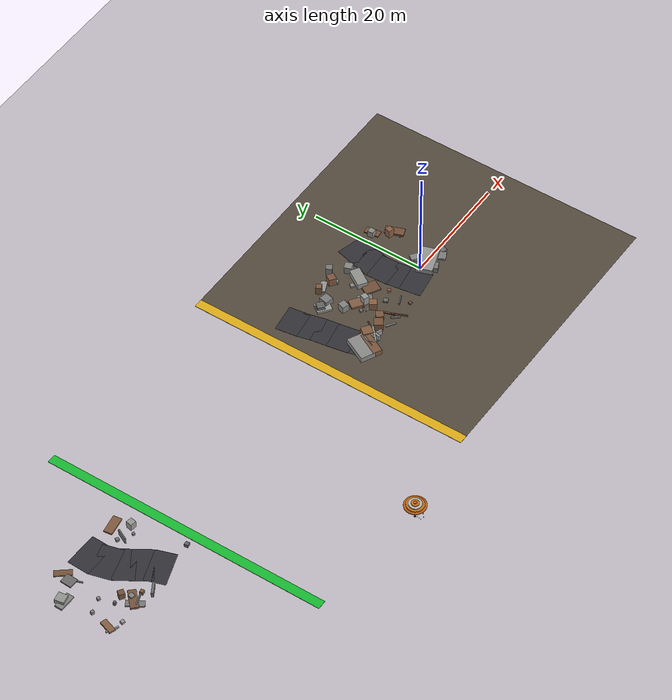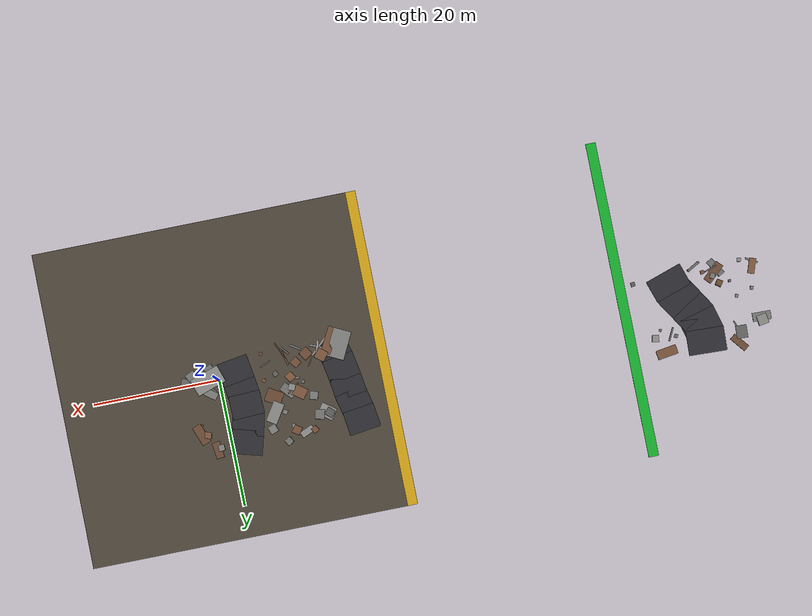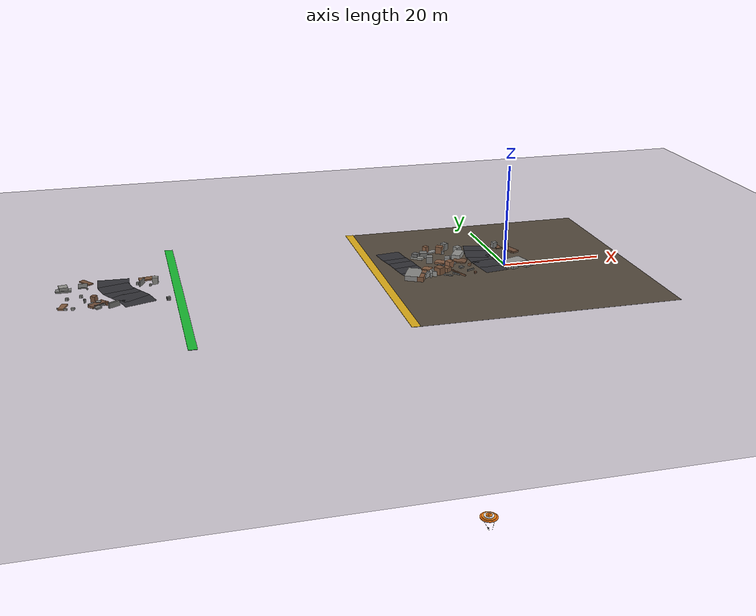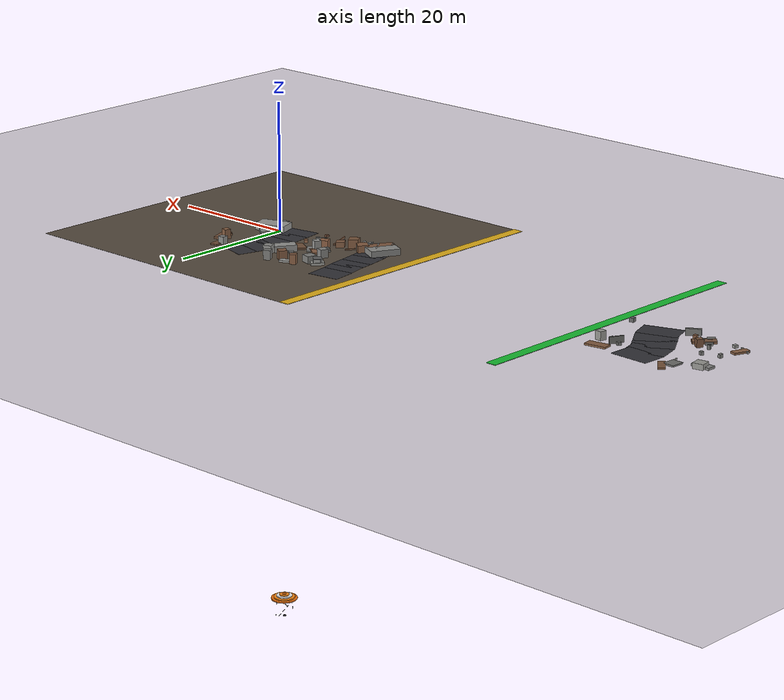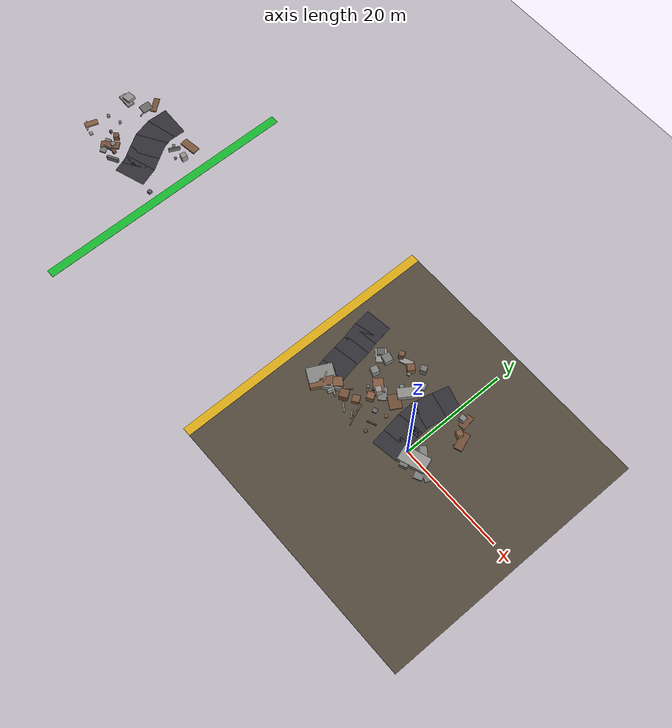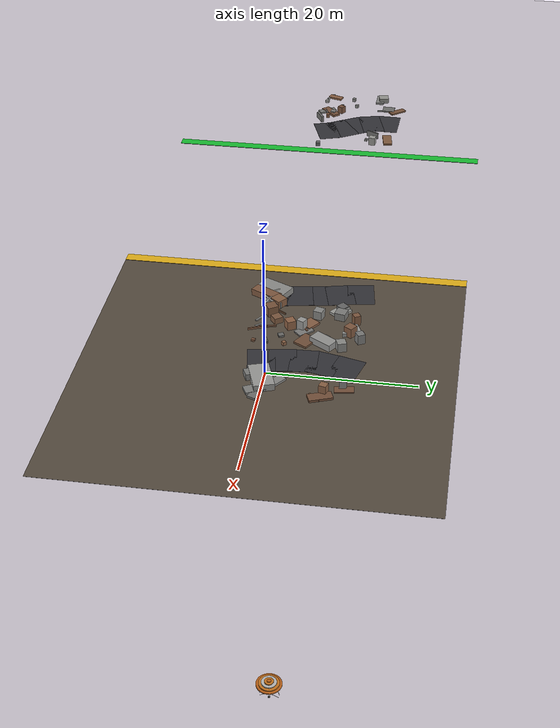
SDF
<sdf version="1.6">
 <world name="navitas_arena">
  <model name="ground_plane">
   <static>true</static>
   <link name="link">
    <collision name="collision">
     <geometry><plane><normal>0 0 1</normal><size>400 400</size></plane></geometry>
     <surface><friction><ode><mu>0.820</mu><mu2>0.820</mu2></ode></friction></surface>
    </collision>
    <visual name="visual">
     <cast_shadows>false</cast_shadows>
     <geometry><plane><normal>0 0 1</normal><size>400 400</size></plane></geometry>
     <material><ambient>0.280 0.270 0.250 1</ambient><diffuse>0.280 0.270 0.250 1</diffuse></material>
    </visual>
   </link>
  </model>
  <model name="brd_kolay_E">
   <static>true</static>
   <pose>-64.200 0.000 0.040 0 0 0.000</pose>
   <link name="link">
    <collision name="col"><geometry><box><size>1.600 50.000 0.080</size></box></geometry></collision>
    <visual name="vis">
     <geometry><box><size>1.600 50.000 0.080</size></box></geometry>
     <material><ambient>0.10 0.75 0.20 1</ambient><diffuse>0.10 0.75 0.20 1</diffuse></material>
    </visual>
   </link>
  </model>
  <model name="road_kolay_3_13">
   <static>true</static>
   <pose>-71.848 -1.117 0.040 0 0 1.893</pose>
   <link name="link">
    <collision name="col"><geometry><box><size>3.606 6.000 0.020</size></box></geometry></collision>
    <visual name="vis">
     <geometry><box><size>3.606 6.000 0.020</size></box></geometry>
     <material><ambient>0.20 0.20 0.22 1</ambient><diffuse>0.20 0.20 0.22 1</diffuse></material>
    </visual>
   </link>
  </model>
  <model name="road_kolay_3_14">
   <static>true</static>
   <pose>-73.018 1.333 0.040 0 0 2.137</pose>
   <link name="link">
    <collision name="col"><geometry><box><size>3.665 6.000 0.020</size></box></geometry></collision>
    <visual name="vis">
     <geometry><box><size>3.665 6.000 0.020</size></box></geometry>
     <material><ambient>0.20 0.20 0.22 1</ambient><diffuse>0.20 0.20 0.22 1</diffuse></material>
    </visual>
   </link>
  </model>
  <model name="road_kolay_3_15">
   <static>true</static>
   <pose>-74.485 3.667 0.040 0 0 2.127</pose>
   <link name="link">
    <collision name="col"><geometry><box><size>3.648 6.000 0.020</size></box></geometry></collision>
    <visual name="vis">
     <geometry><box><size>3.648 6.000 0.020</size></box></geometry>
     <material><ambient>0.20 0.20 0.22 1</ambient><diffuse>0.20 0.20 0.22 1</diffuse></material>
    </visual>
   </link>
  </model>
  <model name="road_kolay_3_16">
   <static>true</static>
   <pose>-75.562 6.137 0.040 0 0 1.834</pose>
   <link name="link">
    <collision name="col"><geometry><box><size>3.599 6.000 0.020</size></box></geometry></collision>
    <visual name="vis">
     <geometry><box><size>3.599 6.000 0.020</size></box></geometry>
     <material><ambient>0.20 0.20 0.22 1</ambient><diffuse>0.20 0.20 0.22 1</diffuse></material>
    </visual>
   </link>
  </model>
  <model name="road_kolay_3_17">
   <static>true</static>
   <pose>-75.861 8.910 0.040 0 0 1.536</pose>
   <link name="link">
    <collision name="col"><geometry><box><size>3.842 6.000 0.020</size></box></geometry></collision>
    <visual name="vis">
     <geometry><box><size>3.842 6.000 0.020</size></box></geometry>
     <material><ambient>0.20 0.20 0.22 1</ambient><diffuse>0.20 0.20 0.22 1</diffuse></material>
    </visual>
   </link>
  </model>
  <model name="deb_kolay_4">
   <static>true</static>
   <pose>-68.069 7.036 0.649 0 0 1.401</pose>
   <link name="link">
    <collision name="col"><geometry><box><size>1.051 1.051 1.299</size></box></geometry></collision>
    <visual name="vis">
     <geometry><box><size>1.051 1.051 1.299</size></box></geometry>
     <material><ambient>0.60 0.60 0.58 1</ambient><diffuse>0.60 0.60 0.58 1</diffuse></material>
    </visual>
   </link>
  </model>
  <model name="deb_kolay_8">
   <static>true</static>
   <pose>-78.709 -2.027 0.187 0 0 0.319</pose>
   <link name="link">
    <collision name="col"><geometry><box><size>2.051 0.212 0.374</size></box></geometry></collision>
    <visual name="vis">
     <geometry><box><size>2.051 0.212 0.374</size></box></geometry>
     <material><ambient>0.42 0.42 0.42 1</ambient><diffuse>0.42 0.42 0.42 1</diffuse></material>
    </visual>
   </link>
  </model>
  <model name="deb_kolay_24">
   <static>true</static>
   <pose>-85.254 -2.083 0.145 0 0 2.637</pose>
   <link name="link">
    <collision name="col"><geometry><box><size>2.065 0.244 0.291</size></box></geometry></collision>
    <visual name="vis">
     <geometry><box><size>2.065 0.244 0.291</size></box></geometry>
     <material><ambient>0.58 0.58 0.57 1</ambient><diffuse>0.58 0.58 0.57 1</diffuse></material>
    </visual>
   </link>
  </model>
  <model name="deb_kolay_26">
   <static>true</static>
   <pose>-83.326 -2.533 0.203 0 0 1.327</pose>
   <link name="link">
    <collision name="col"><geometry><box><size>0.581 0.581 0.405</size></box></geometry></collision>
    <visual name="vis">
     <geometry><box><size>0.581 0.581 0.405</size></box></geometry>
     <material><ambient>0.59 0.59 0.58 1</ambient><diffuse>0.59 0.59 0.58 1</diffuse></material>
    </visual>
   </link>
  </model>
  <model name="deb_kolay_28">
   <static>true</static>
   <pose>-85.096 7.355 0.417 0 0 1.737</pose>
   <link name="link">
    <collision name="col"><geometry><box><size>1.596 1.596 0.834</size></box></geometry></collision>
    <visual name="vis">
     <geometry><box><size>1.596 1.596 0.834</size></box></geometry>
     <material><ambient>0.59 0.59 0.57 1</ambient><diffuse>0.59 0.59 0.57 1</diffuse></material>
    </visual>
   </link>
  </model>
  <model name="deb_kolay_29">
   <static>true</static>
   <pose>-81.550 8.585 0.117 0 0 1.534</pose>
   <link name="link">
    <collision name="col"><geometry><box><size>2.020 1.723 0.233</size></box></geometry></collision>
    <visual name="vis">
     <geometry><box><size>2.020 1.723 0.233</size></box></geometry>
     <material><ambient>0.43 0.43 0.42 1</ambient><diffuse>0.43 0.43 0.42 1</diffuse></material>
    </visual>
   </link>
  </model>
  <model name="deb_kolay_50">
   <static>true</static>
   <pose>-84.418 2.161 0.266 0 0 2.775</pose>
   <link name="link">
    <collision name="col"><geometry><box><size>0.518 0.518 0.531</size></box></geometry></collision>
    <visual name="vis">
     <geometry><box><size>0.518 0.518 0.531</size></box></geometry>
     <material><ambient>0.50 0.50 0.49 1</ambient><diffuse>0.50 0.50 0.49 1</diffuse></material>
    </visual>
   </link>
  </model>
  <model name="deb_kolay_57">
   <static>true</static>
   <pose>-81.002 7.693 0.113 0 0 1.915</pose>
   <link name="link">
    <collision name="col"><geometry><box><size>2.131 0.167 0.226</size></box></geometry></collision>
    <visual name="vis">
     <geometry><box><size>2.131 0.167 0.226</size></box></geometry>
     <material><ambient>0.58 0.58 0.57 1</ambient><diffuse>0.58 0.58 0.57 1</diffuse></material>
    </visual>
   </link>
  </model>
  <model name="deb_kolay_65">
   <static>true</static>
   <pose>-78.777 -0.887 0.291 0 0 1.323</pose>
   <link name="link">
    <collision name="col"><geometry><box><size>0.798 0.798 0.581</size></box></geometry></collision>
    <visual name="vis">
     <geometry><box><size>0.798 0.798 0.581</size></box></geometry>
     <material><ambient>0.52 0.52 0.51 1</ambient><diffuse>0.52 0.52 0.51 1</diffuse></material>
    </visual>
   </link>
  </model>
  <model name="deb_kolay_86">
   <static>true</static>
   <pose>-71.355 7.222 0.216 0 0 1.067</pose>
   <link name="link">
    <collision name="col"><geometry><box><size>0.551 0.551 0.431</size></box></geometry></collision>
    <visual name="vis">
     <geometry><box><size>0.551 0.551 0.431</size></box></geometry>
     <material><ambient>0.46 0.46 0.45 1</ambient><diffuse>0.46 0.46 0.45 1</diffuse></material>
    </visual>
   </link>
  </model>
  <model name="deb_kolay_87">
   <static>true</static>
   <pose>-85.100 6.811 0.172 0 0 3.123</pose>
   <link name="link">
    <collision name="col"><geometry><box><size>2.889 1.356 0.343</size></box></geometry></collision>
    <visual name="vis">
     <geometry><box><size>2.889 1.356 0.343</size></box></geometry>
     <material><ambient>0.52 0.52 0.51 1</ambient><diffuse>0.52 0.52 0.51 1</diffuse></material>
    </visual>
   </link>
  </model>
  <model name="deb_kolay_104">
   <static>true</static>
   <pose>-79.547 0.436 0.578 0 0 2.535</pose>
   <link name="link">
    <collision name="col"><geometry><box><size>0.953 0.953 1.156</size></box></geometry></collision>
    <visual name="vis">
     <geometry><box><size>0.953 0.953 1.156</size></box></geometry>
     <material><ambient>0.46 0.32 0.23 1</ambient><diffuse>0.46 0.32 0.23 1</diffuse></material>
    </visual>
   </link>
  </model>
  <model name="deb_kolay_107">
   <static>true</static>
   <pose>-81.230 0.408 0.331 0 0 0.158</pose>
   <link name="link">
    <collision name="col"><geometry><box><size>0.406 0.406 0.663</size></box></geometry></collision>
    <visual name="vis">
     <geometry><box><size>0.406 0.406 0.663</size></box></geometry>
     <material><ambient>0.41 0.41 0.40 1</ambient><diffuse>0.41 0.41 0.40 1</diffuse></material>
    </visual>
   </link>
  </model>
  <model name="deb_kolay_112">
   <static>true</static>
   <pose>-66.313 -1.989 0.294 0 0 0.131</pose>
   <link name="link">
    <collision name="col"><geometry><box><size>0.651 0.651 0.589</size></box></geometry></collision>
    <visual name="vis">
     <geometry><box><size>0.651 0.651 0.589</size></box></geometry>
     <material><ambient>0.40 0.40 0.40 1</ambient><diffuse>0.40 0.40 0.40 1</diffuse></material>
    </visual>
   </link>
  </model>
  <model name="deb_kolay_118">
   <static>true</static>
   <pose>-69.462 9.462 0.139 0 0 0.149</pose>
   <link name="link">
    <collision name="col"><geometry><box><size>3.253 1.464 0.277</size></box></geometry></collision>
    <visual name="vis">
     <geometry><box><size>3.253 1.464 0.277</size></box></geometry>
     <material><ambient>0.51 0.36 0.25 1</ambient><diffuse>0.51 0.36 0.25 1</diffuse></material>
    </visual>
   </link>
  </model>
  <model name="deb_kolay_120">
   <static>true</static>
   <pose>-77.312 -1.715 0.319 0 0 0.114</pose>
   <link name="link">
    <collision name="col"><geometry><box><size>0.581 0.581 0.638</size></box></geometry></collision>
    <visual name="vis">
     <geometry><box><size>0.581 0.581 0.638</size></box></geometry>
     <material><ambient>0.51 0.35 0.25 1</ambient><diffuse>0.51 0.35 0.25 1</diffuse></material>
    </visual>
   </link>
  </model>
  <model name="deb_kolay_121">
   <static>true</static>
   <pose>-79.053 -1.368 0.185 0 0 0.758</pose>
   <link name="link">
    <collision name="col"><geometry><box><size>3.394 1.347 0.370</size></box></geometry></collision>
    <visual name="vis">
     <geometry><box><size>3.394 1.347 0.370</size></box></geometry>
     <material><ambient>0.47 0.33 0.24 1</ambient><diffuse>0.47 0.33 0.24 1</diffuse></material>
    </visual>
   </link>
  </model>
  <model name="deb_kolay_122">
   <static>true</static>
   <pose>-79.506 -2.078 0.144 0 0 2.115</pose>
   <link name="link">
    <collision name="col"><geometry><box><size>2.988 1.107 0.288</size></box></geometry></collision>
    <visual name="vis">
     <geometry><box><size>2.988 1.107 0.288</size></box></geometry>
     <material><ambient>0.48 0.48 0.47 1</ambient><diffuse>0.48 0.48 0.47 1</diffuse></material>
    </visual>
   </link>
  </model>
  <model name="deb_kolay_130">
   <static>true</static>
   <pose>-69.086 5.898 0.187 0 0 1.176</pose>
   <link name="link">
    <collision name="col"><geometry><box><size>0.408 0.408 0.374</size></box></geometry></collision>
    <visual name="vis">
     <geometry><box><size>0.408 0.408 0.374</size></box></geometry>
     <material><ambient>0.47 0.47 0.46 1</ambient><diffuse>0.47 0.47 0.46 1</diffuse></material>
    </visual>
   </link>
  </model>
  <model name="deb_kolay_139">
   <static>true</static>
   <pose>-80.895 10.191 0.112 0 0 2.247</pose>
   <link name="link">
    <collision name="col"><geometry><box><size>2.909 1.071 0.224</size></box></geometry></collision>
    <visual name="vis">
     <geometry><box><size>2.909 1.071 0.224</size></box></geometry>
     <material><ambient>0.47 0.33 0.23 1</ambient><diffuse>0.47 0.33 0.23 1</diffuse></material>
    </visual>
   </link>
  </model>
  <model name="deb_kolay_143">
   <static>true</static>
   <pose>-81.879 2.931 0.249 0 0 2.707</pose>
   <link name="link">
    <collision name="col"><geometry><box><size>0.476 0.476 0.499</size></box></geometry></collision>
    <visual name="vis">
     <geometry><box><size>0.476 0.476 0.499</size></box></geometry>
     <material><ambient>0.52 0.52 0.51 1</ambient><diffuse>0.52 0.52 0.51 1</diffuse></material>
    </visual>
   </link>
  </model>
  <model name="deb_kolay_144">
   <static>true</static>
   <pose>-85.143 -1.214 0.150 0 0 1.243</pose>
   <link name="link">
    <collision name="col"><geometry><box><size>2.426 1.064 0.300</size></box></geometry></collision>
    <visual name="vis">
     <geometry><box><size>2.426 1.064 0.300</size></box></geometry>
     <material><ambient>0.54 0.38 0.27 1</ambient><diffuse>0.54 0.38 0.27 1</diffuse></material>
    </visual>
   </link>
  </model>
  <model name="chic_kolay_4">
   <static>true</static>
   <pose>-76.095 -2.866 0.500 0 0 0.515</pose>
   <link name="link">
    <collision name="col"><geometry><box><size>2.194 0.404 1.000</size></box></geometry></collision>
    <visual name="vis">
     <geometry><box><size>2.194 0.404 1.000</size></box></geometry>
     <material><ambient>0.43 0.43 0.42 1</ambient><diffuse>0.43 0.43 0.42 1</diffuse></material>
    </visual>
   </link>
  </model>
  <model name="chic_kolay_5">
   <static>true</static>
   <pose>-70.607 6.839 0.500 0 0 1.107</pose>
   <link name="link">
    <collision name="col"><geometry><box><size>2.160 0.215 1.000</size></box></geometry></collision>
    <visual name="vis">
     <geometry><box><size>2.160 0.215 1.000</size></box></geometry>
     <material><ambient>0.44 0.44 0.43 1</ambient><diffuse>0.44 0.44 0.43 1</diffuse></material>
    </visual>
   </link>
  </model>
  <model name="gd_orta">
   <static>true</static>
   <pose>0.000 0.000 0.010 0 0 0.000</pose>
   <link name="link">
    <collision name="col"><geometry><box><size>50.000 50.000 0.020</size></box></geometry></collision>
    <visual name="vis">
     <geometry><box><size>50.000 50.000 0.020</size></box></geometry>
     <material><ambient>0.34 0.30 0.25 1</ambient><diffuse>0.34 0.30 0.25 1</diffuse></material>
    </visual>
   </link>
  </model>
  <model name="brd_orta_W">
   <static>true</static>
   <pose>-25.800 0.000 0.040 0 0 0.000</pose>
   <link name="link">
    <collision name="col"><geometry><box><size>1.600 50.000 0.080</size></box></geometry></collision>
    <visual name="vis">
     <geometry><box><size>1.600 50.000 0.080</size></box></geometry>
     <material><ambient>0.90 0.70 0.10 1</ambient><diffuse>0.90 0.70 0.10 1</diffuse></material>
    </visual>
   </link>
  </model>
  <model name="road_orta_1_11">
   <static>true</static>
   <pose>-18.474 -0.883 0.040 0 0 1.838</pose>
   <link name="link">
    <collision name="col"><geometry><box><size>3.561 5.000 0.020</size></box></geometry></collision>
    <visual name="vis">
     <geometry><box><size>3.561 5.000 0.020</size></box></geometry>
     <material><ambient>0.20 0.20 0.22 1</ambient><diffuse>0.20 0.20 0.22 1</diffuse></material>
    </visual>
   </link>
  </model>
  <model name="road_orta_1_12">
   <static>true</static>
   <pose>-19.076 1.800 0.040 0 0 1.748</pose>
   <link name="link">
    <collision name="col"><geometry><box><size>3.744 5.000 0.020</size></box></geometry></collision>
    <visual name="vis">
     <geometry><box><size>3.744 5.000 0.020</size></box></geometry>
     <material><ambient>0.20 0.20 0.22 1</ambient><diffuse>0.20 0.20 0.22 1</diffuse></material>
    </visual>
   </link>
  </model>
  <model name="road_orta_1_13">
   <static>true</static>
   <pose>-19.529 4.600 0.040 0 0 1.715</pose>
   <link name="link">
    <collision name="col"><geometry><box><size>3.729 5.000 0.020</size></box></geometry></collision>
    <visual name="vis">
     <geometry><box><size>3.729 5.000 0.020</size></box></geometry>
     <material><ambient>0.20 0.20 0.22 1</ambient><diffuse>0.20 0.20 0.22 1</diffuse></material>
    </visual>
   </link>
  </model>
  <model name="road_orta_1_14">
   <static>true</static>
   <pose>-20.082 7.460 0.040 0 0 1.806</pose>
   <link name="link">
    <collision name="col"><geometry><box><size>3.903 5.000 0.020</size></box></geometry></collision>
    <visual name="vis">
     <geometry><box><size>3.903 5.000 0.020</size></box></geometry>
     <material><ambient>0.20 0.20 0.22 1</ambient><diffuse>0.20 0.20 0.22 1</diffuse></material>
    </visual>
   </link>
  </model>
  <model name="road_orta_1_15">
   <static>true</static>
   <pose>-20.626 10.340 0.040 0 0 1.707</pose>
   <link name="link">
    <collision name="col"><geometry><box><size>3.766 5.000 0.020</size></box></geometry></collision>
    <visual name="vis">
     <geometry><box><size>3.766 5.000 0.020</size></box></geometry>
     <material><ambient>0.20 0.20 0.22 1</ambient><diffuse>0.20 0.20 0.22 1</diffuse></material>
    </visual>
   </link>
  </model>
  <model name="road_orta_2_9">
   <static>true</static>
   <pose>-2.696 -1.000 0.040 0 0 1.727</pose>
   <link name="link">
    <collision name="col"><geometry><box><size>3.734 5.000 0.020</size></box></geometry></collision>
    <visual name="vis">
     <geometry><box><size>3.734 5.000 0.020</size></box></geometry>
     <material><ambient>0.20 0.20 0.22 1</ambient><diffuse>0.20 0.20 0.22 1</diffuse></material>
    </visual>
   </link>
  </model>
  <model name="road_orta_2_10">
   <static>true</static>
   <pose>-3.121 1.800 0.040 0 0 1.716</pose>
   <link name="link">
    <collision name="col"><geometry><box><size>3.730 5.000 0.020</size></box></geometry></collision>
    <visual name="vis">
     <geometry><box><size>3.730 5.000 0.020</size></box></geometry>
     <material><ambient>0.20 0.20 0.22 1</ambient><diffuse>0.20 0.20 0.22 1</diffuse></material>
    </visual>
   </link>
  </model>
  <model name="road_orta_2_11">
   <static>true</static>
   <pose>-3.380 4.600 0.040 0 0 1.609</pose>
   <link name="link">
    <collision name="col"><geometry><box><size>3.702 5.000 0.020</size></box></geometry></collision>
    <visual name="vis">
     <geometry><box><size>3.702 5.000 0.020</size></box></geometry>
     <material><ambient>0.20 0.20 0.22 1</ambient><diffuse>0.20 0.20 0.22 1</diffuse></material>
    </visual>
   </link>
  </model>
  <model name="road_orta_2_12">
   <static>true</static>
   <pose>-3.095 7.460 0.040 0 0 1.342</pose>
   <link name="link">
    <collision name="col"><geometry><box><size>3.898 5.000 0.020</size></box></geometry></collision>
    <visual name="vis">
     <geometry><box><size>3.898 5.000 0.020</size></box></geometry>
     <material><ambient>0.20 0.20 0.22 1</ambient><diffuse>0.20 0.20 0.22 1</diffuse></material>
    </visual>
   </link>
  </model>
  <model name="road_orta_2_13">
   <static>true</static>
   <pose>-2.367 10.340 0.040 0 0 1.304</pose>
   <link name="link">
    <collision name="col"><geometry><box><size>3.844 5.000 0.020</size></box></geometry></collision>
    <visual name="vis">
     <geometry><box><size>3.844 5.000 0.020</size></box></geometry>
     <material><ambient>0.20 0.20 0.22 1</ambient><diffuse>0.20 0.20 0.22 1</diffuse></material>
    </visual>
   </link>
  </model>
  <model name="blk_orta_1_1_1">
   <static>true</static>
   <pose>-16.377 -0.786 0.590 0 0 2.468</pose>
   <link name="link">
    <collision name="col"><geometry><box><size>1.656 1.656 1.180</size></box></geometry></collision>
    <visual name="vis">
     <geometry><box><size>1.656 1.656 1.180</size></box></geometry>
     <material><ambient>0.53 0.37 0.26 1</ambient><diffuse>0.53 0.37 0.26 1</diffuse></material>
    </visual>
   </link>
  </model>
  <model name="blk_orta_1_1_2">
   <static>true</static>
   <pose>-18.215 -2.101 0.500 0 0 2.199</pose>
   <link name="link">
    <collision name="col"><geometry><box><size>2.712 0.243 1.000</size></box></geometry></collision>
    <visual name="vis">
     <geometry><box><size>2.712 0.243 1.000</size></box></geometry>
     <material><ambient>0.54 0.54 0.53 1</ambient><diffuse>0.54 0.54 0.53 1</diffuse></material>
    </visual>
   </link>
  </model>
  <model name="blk_orta_1_1_3">
   <static>true</static>
   <pose>-15.929 -1.718 0.500 0 0 1.350</pose>
   <link name="link">
    <collision name="col"><geometry><box><size>2.886 0.377 1.000</size></box></geometry></collision>
    <visual name="vis">
     <geometry><box><size>2.886 0.377 1.000</size></box></geometry>
     <material><ambient>0.61 0.61 0.60 1</ambient><diffuse>0.61 0.61 0.60 1</diffuse></material>
    </visual>
   </link>
  </model>
  <model name="blk_orta_1_1_4">
   <static>true</static>
   <pose>-16.239 -2.095 0.500 0 0 0.749</pose>
   <link name="link">
    <collision name="col"><geometry><box><size>3.449 0.325 1.000</size></box></geometry></collision>
    <visual name="vis">
     <geometry><box><size>3.449 0.325 1.000</size></box></geometry>
     <material><ambient>0.57 0.57 0.56 1</ambient><diffuse>0.57 0.57 0.56 1</diffuse></material>
    </visual>
   </link>
  </model>
  <model name="blk_orta_1_1_5">
   <static>true</static>
   <pose>-19.382 -1.922 0.500 0 0 1.105</pose>
   <link name="link">
    <collision name="col"><geometry><box><size>4.570 2.865 1.000</size></box></geometry></collision>
    <visual name="vis">
     <geometry><box><size>4.570 2.865 1.000</size></box></geometry>
     <material><ambient>0.55 0.55 0.54 1</ambient><diffuse>0.55 0.55 0.54 1</diffuse></material>
    </visual>
   </link>
  </model>
  <model name="blk_orta_1_1_6">
   <static>true</static>
   <pose>-15.894 -2.207 0.500 0 0 2.724</pose>
   <link name="link">
    <collision name="col"><geometry><box><size>2.157 0.282 1.000</size></box></geometry></collision>
    <visual name="vis">
     <geometry><box><size>2.157 0.282 1.000</size></box></geometry>
     <material><ambient>0.61 0.61 0.60 1</ambient><diffuse>0.61 0.61 0.60 1</diffuse></material>
    </visual>
   </link>
  </model>
  <model name="blk_orta_1_1_7">
   <static>true</static>
   <pose>-18.073 -2.748 0.500 0 0 1.082</pose>
   <link name="link">
    <collision name="col"><geometry><box><size>4.290 1.547 1.000</size></box></geometry></collision>
    <visual name="vis">
     <geometry><box><size>4.290 1.547 1.000</size></box></geometry>
     <material><ambient>0.50 0.35 0.25 1</ambient><diffuse>0.50 0.35 0.25 1</diffuse></material>
    </visual>
   </link>
  </model>
  <model name="deb_orta_2">
   <static>true</static>
   <pose>-6.836 1.411 0.243 0 0 2.250</pose>
   <link name="link">
    <collision name="col"><geometry><box><size>0.533 0.533 0.485</size></box></geometry></collision>
    <visual name="vis">
     <geometry><box><size>0.533 0.533 0.485</size></box></geometry>
     <material><ambient>0.54 0.38 0.27 1</ambient><diffuse>0.54 0.38 0.27 1</diffuse></material>
    </visual>
   </link>
  </model>
  <model name="deb_orta_13">
   <static>true</static>
   <pose>3.843 -0.801 0.165 0 0 2.038</pose>
   <link name="link">
    <collision name="col"><geometry><box><size>2.766 1.570 0.331</size></box></geometry></collision>
    <visual name="vis">
     <geometry><box><size>2.766 1.570 0.331</size></box></geometry>
     <material><ambient>0.50 0.50 0.49 1</ambient><diffuse>0.50 0.50 0.49 1</diffuse></material>
    </visual>
   </link>
  </model>
  <model name="deb_orta_14">
   <static>true</static>
   <pose>-7.962 4.651 0.115 0 0 2.113</pose>
   <link name="link">
    <collision name="col"><geometry><box><size>1.587 0.255 0.230</size></box></geometry></collision>
    <visual name="vis">
     <geometry><box><size>1.587 0.255 0.230</size></box></geometry>
     <material><ambient>0.50 0.35 0.25 1</ambient><diffuse>0.50 0.35 0.25 1</diffuse></material>
    </visual>
   </link>
  </model>
  <model name="deb_orta_15">
   <static>true</static>
   <pose>-14.538 -0.216 0.119 0 0 1.006</pose>
   <link name="link">
    <collision name="col"><geometry><box><size>1.825 0.155 0.239</size></box></geometry></collision>
    <visual name="vis">
     <geometry><box><size>1.825 0.155 0.239</size></box></geometry>
     <material><ambient>0.49 0.35 0.25 1</ambient><diffuse>0.49 0.35 0.25 1</diffuse></material>
    </visual>
   </link>
  </model>
  <model name="deb_orta_17">
   <static>true</static>
   <pose>-8.887 11.477 0.737 0 0 2.080</pose>
   <link name="link">
    <collision name="col"><geometry><box><size>1.063 1.063 1.473</size></box></geometry></collision>
    <visual name="vis">
     <geometry><box><size>1.063 1.063 1.473</size></box></geometry>
     <material><ambient>0.48 0.48 0.47 1</ambient><diffuse>0.48 0.48 0.47 1</diffuse></material>
    </visual>
   </link>
  </model>
  <model name="deb_orta_25">
   <static>true</static>
   <pose>-10.262 3.665 0.112 0 0 2.310</pose>
   <link name="link">
    <collision name="col"><geometry><box><size>2.404 1.459 0.224</size></box></geometry></collision>
    <visual name="vis">
     <geometry><box><size>2.404 1.459 0.224</size></box></geometry>
     <material><ambient>0.49 0.49 0.48 1</ambient><diffuse>0.49 0.49 0.48 1</diffuse></material>
    </visual>
   </link>
  </model>
  <model name="deb_orta_29">
   <static>true</static>
   <pose>-10.919 3.285 0.785 0 0 2.721</pose>
   <link name="link">
    <collision name="col"><geometry><box><size>1.028 1.028 1.569</size></box></geometry></collision>
    <visual name="vis">
     <geometry><box><size>1.028 1.028 1.569</size></box></geometry>
     <material><ambient>0.60 0.60 0.59 1</ambient><diffuse>0.60 0.60 0.59 1</diffuse></material>
    </visual>
   </link>
  </model>
  <model name="deb_orta_34">
   <static>true</static>
   <pose>-10.704 -1.414 0.119 0 0 1.853</pose>
   <link name="link">
    <collision name="col"><geometry><box><size>2.383 0.267 0.237</size></box></geometry></collision>
    <visual name="vis">
     <geometry><box><size>2.383 0.267 0.237</size></box></geometry>
     <material><ambient>0.45 0.32 0.23 1</ambient><diffuse>0.45 0.32 0.23 1</diffuse></material>
    </visual>
   </link>
  </model>
  <model name="deb_orta_43">
   <static>true</static>
   <pose>-10.027 9.227 0.300 0 0 1.807</pose>
   <link name="link">
    <collision name="col"><geometry><box><size>0.545 0.545 0.601</size></box></geometry></collision>
    <visual name="vis">
     <geometry><box><size>0.545 0.545 0.601</size></box></geometry>
     <material><ambient>0.60 0.60 0.59 1</ambient><diffuse>0.60 0.60 0.59 1</diffuse></material>
    </visual>
   </link>
  </model>
  <model name="deb_orta_44">
   <static>true</static>
   <pose>-14.030 5.216 0.657 0 0 2.843</pose>
   <link name="link">
    <collision name="col"><geometry><box><size>1.258 1.258 1.315</size></box></geometry></collision>
    <visual name="vis">
     <geometry><box><size>1.258 1.258 1.315</size></box></geometry>
     <material><ambient>0.53 0.53 0.52 1</ambient><diffuse>0.53 0.53 0.52 1</diffuse></material>
    </visual>
   </link>
  </model>
  <model name="deb_orta_55">
   <static>true</static>
   <pose>-9.148 6.878 0.158 0 0 2.571</pose>
   <link name="link">
    <collision name="col"><geometry><box><size>0.700 0.700 0.315</size></box></geometry></collision>
    <visual name="vis">
     <geometry><box><size>0.700 0.700 0.315</size></box></geometry>
     <material><ambient>0.54 0.54 0.53 1</ambient><diffuse>0.54 0.54 0.53 1</diffuse></material>
    </visual>
   </link>
  </model>
  <model name="deb_orta_57">
   <static>true</static>
   <pose>-12.611 -2.762 0.094 0 0 2.564</pose>
   <link name="link">
    <collision name="col"><geometry><box><size>1.806 0.277 0.187</size></box></geometry></collision>
    <visual name="vis">
     <geometry><box><size>1.806 0.277 0.187</size></box></geometry>
     <material><ambient>0.51 0.51 0.50 1</ambient><diffuse>0.51 0.51 0.50 1</diffuse></material>
    </visual>
   </link>
  </model>
  <model name="deb_orta_62">
   <static>true</static>
   <pose>-12.235 -0.418 0.444 0 0 2.216</pose>
   <link name="link">
    <collision name="col"><geometry><box><size>1.281 1.281 0.887</size></box></geometry></collision>
    <visual name="vis">
     <geometry><box><size>1.281 1.281 0.887</size></box></geometry>
     <material><ambient>0.49 0.35 0.25 1</ambient><diffuse>0.49 0.35 0.25 1</diffuse></material>
    </visual>
   </link>
  </model>
  <model name="deb_orta_69">
   <static>true</static>
   <pose>-7.901 4.196 0.149 0 0 2.609</pose>
   <link name="link">
    <collision name="col"><geometry><box><size>2.623 2.110 0.298</size></box></geometry></collision>
    <visual name="vis">
     <geometry><box><size>2.623 2.110 0.298</size></box></geometry>
     <material><ambient>0.45 0.32 0.23 1</ambient><diffuse>0.45 0.32 0.23 1</diffuse></material>
    </visual>
   </link>
  </model>
  <model name="deb_orta_73">
   <static>true</static>
   <pose>4.372 7.789 0.185 0 0 1.935</pose>
   <link name="link">
    <collision name="col"><geometry><box><size>3.221 1.459 0.369</size></box></geometry></collision>
    <visual name="vis">
     <geometry><box><size>3.221 1.459 0.369</size></box></geometry>
     <material><ambient>0.46 0.32 0.23 1</ambient><diffuse>0.46 0.32 0.23 1</diffuse></material>
    </visual>
   </link>
  </model>
  <model name="deb_orta_75">
   <static>true</static>
   <pose>-16.026 8.557 0.443 0 0 2.412</pose>
   <link name="link">
    <collision name="col"><geometry><box><size>0.990 0.990 0.886</size></box></geometry></collision>
    <visual name="vis">
     <geometry><box><size>0.990 0.990 0.886</size></box></geometry>
     <material><ambient>0.60 0.60 0.59 1</ambient><diffuse>0.60 0.60 0.59 1</diffuse></material>
    </visual>
   </link>
  </model>
  <model name="deb_orta_78">
   <static>true</static>
   <pose>2.301 10.654 0.104 0 0 1.697</pose>
   <link name="link">
    <collision name="col"><geometry><box><size>2.567 1.254 0.208</size></box></geometry></collision>
    <visual name="vis">
     <geometry><box><size>2.567 1.254 0.208</size></box></geometry>
     <material><ambient>0.46 0.32 0.23 1</ambient><diffuse>0.46 0.32 0.23 1</diffuse></material>
    </visual>
   </link>
  </model>
  <model name="deb_orta_79">
   <static>true</static>
   <pose>-14.039 -1.448 0.724 0 0 0.572</pose>
   <link name="link">
    <collision name="col"><geometry><box><size>1.518 1.518 1.447</size></box></geometry></collision>
    <visual name="vis">
     <geometry><box><size>1.518 1.518 1.447</size></box></geometry>
     <material><ambient>0.47 0.33 0.23 1</ambient><diffuse>0.47 0.33 0.23 1</diffuse></material>
    </visual>
   </link>
  </model>
  <model name="deb_orta_89">
   <static>true</static>
   <pose>-11.092 3.477 0.146 0 0 0.643</pose>
   <link name="link">
    <collision name="col"><geometry><box><size>2.216 0.238 0.292</size></box></geometry></collision>
    <visual name="vis">
     <geometry><box><size>2.216 0.238 0.292</size></box></geometry>
     <material><ambient>0.48 0.33 0.24 1</ambient><diffuse>0.48 0.33 0.24 1</diffuse></material>
    </visual>
   </link>
  </model>
  <model name="deb_orta_90">
   <static>true</static>
   <pose>1.185 -1.838 0.481 0 0 1.995</pose>
   <link name="link">
    <collision name="col"><geometry><box><size>1.429 1.429 0.961</size></box></geometry></collision>
    <visual name="vis">
     <geometry><box><size>1.429 1.429 0.961</size></box></geometry>
     <material><ambient>0.48 0.48 0.47 1</ambient><diffuse>0.48 0.48 0.47 1</diffuse></material>
    </visual>
   </link>
  </model>
  <model name="deb_orta_98">
   <static>true</static>
   <pose>-10.883 -2.548 0.127 0 0 2.281</pose>
   <link name="link">
    <collision name="col"><geometry><box><size>1.609 0.273 0.254</size></box></geometry></collision>
    <visual name="vis">
     <geometry><box><size>1.609 0.273 0.254</size></box></geometry>
     <material><ambient>0.46 0.46 0.45 1</ambient><diffuse>0.46 0.46 0.45 1</diffuse></material>
    </visual>
   </link>
  </model>
  <model name="deb_orta_106">
   <static>true</static>
   <pose>-8.789 0.713 0.154 0 0 1.967</pose>
   <link name="link">
    <collision name="col"><geometry><box><size>0.787 0.787 0.307</size></box></geometry></collision>
    <visual name="vis">
     <geometry><box><size>0.787 0.787 0.307</size></box></geometry>
     <material><ambient>0.41 0.41 0.40 1</ambient><diffuse>0.41 0.41 0.40 1</diffuse></material>
    </visual>
   </link>
  </model>
  <model name="deb_orta_107">
   <static>true</static>
   <pose>3.334 8.097 0.746 0 0 1.293</pose>
   <link name="link">
    <collision name="col"><geometry><box><size>1.010 1.010 1.493</size></box></geometry></collision>
    <visual name="vis">
     <geometry><box><size>1.010 1.010 1.493</size></box></geometry>
     <material><ambient>0.54 0.38 0.27 1</ambient><diffuse>0.54 0.38 0.27 1</diffuse></material>
    </visual>
   </link>
  </model>
  <model name="deb_orta_111">
   <static>true</static>
   <pose>-7.509 -1.147 0.172 0 0 0.405</pose>
   <link name="link">
    <collision name="col"><geometry><box><size>1.691 0.187 0.344</size></box></geometry></collision>
    <visual name="vis">
     <geometry><box><size>1.691 0.187 0.344</size></box></geometry>
     <material><ambient>0.40 0.40 0.39 1</ambient><diffuse>0.40 0.40 0.39 1</diffuse></material>
    </visual>
   </link>
  </model>
  <model name="deb_orta_113">
   <static>true</static>
   <pose>2.011 1.611 0.180 0 0 2.502</pose>
   <link name="link">
    <collision name="col"><geometry><box><size>2.880 1.213 0.359</size></box></geometry></collision>
    <visual name="vis">
     <geometry><box><size>2.880 1.213 0.359</size></box></geometry>
     <material><ambient>0.53 0.53 0.52 1</ambient><diffuse>0.53 0.53 0.52 1</diffuse></material>
    </visual>
   </link>
  </model>
  <model name="deb_orta_115">
   <static>true</static>
   <pose>-14.372 8.274 0.556 0 0 2.919</pose>
   <link name="link">
    <collision name="col"><geometry><box><size>1.526 1.526 1.112</size></box></geometry></collision>
    <visual name="vis">
     <geometry><box><size>1.526 1.526 1.112</size></box></geometry>
     <material><ambient>0.49 0.49 0.48 1</ambient><diffuse>0.49 0.49 0.48 1</diffuse></material>
    </visual>
   </link>
  </model>
  <model name="deb_orta_117">
   <static>true</static>
   <pose>-10.424 9.993 0.726 0 0 0.965</pose>
   <link name="link">
    <collision name="col"><geometry><box><size>1.275 1.275 1.452</size></box></geometry></collision>
    <visual name="vis">
     <geometry><box><size>1.275 1.275 1.452</size></box></geometry>
     <material><ambient>0.50 0.35 0.25 1</ambient><diffuse>0.50 0.35 0.25 1</diffuse></material>
    </visual>
   </link>
  </model>
  <model name="deb_orta_122">
   <static>true</static>
   <pose>-6.791 9.159 0.668 0 0 0.355</pose>
   <link name="link">
    <collision name="col"><geometry><box><size>1.263 1.263 1.336</size></box></geometry></collision>
    <visual name="vis">
     <geometry><box><size>1.263 1.263 1.336</size></box></geometry>
     <material><ambient>0.54 0.54 0.53 1</ambient><diffuse>0.54 0.54 0.53 1</diffuse></material>
    </visual>
   </link>
  </model>
  <model name="deb_orta_124">
   <static>true</static>
   <pose>1.679 10.424 0.604 0 0 0.063</pose>
   <link name="link">
    <collision name="col"><geometry><box><size>0.958 0.958 1.208</size></box></geometry></collision>
    <visual name="vis">
     <geometry><box><size>0.958 0.958 1.208</size></box></geometry>
     <material><ambient>0.55 0.55 0.54 1</ambient><diffuse>0.55 0.55 0.54 1</diffuse></material>
    </visual>
   </link>
  </model>
  <model name="deb_orta_130">
   <static>true</static>
   <pose>-10.980 1.652 0.658 0 0 2.117</pose>
   <link name="link">
    <collision name="col"><geometry><box><size>1.248 1.248 1.317</size></box></geometry></collision>
    <visual name="vis">
     <geometry><box><size>1.248 1.248 1.317</size></box></geometry>
     <material><ambient>0.55 0.38 0.27 1</ambient><diffuse>0.55 0.38 0.27 1</diffuse></material>
    </visual>
   </link>
  </model>
  <model name="deb_orta_146">
   <static>true</static>
   <pose>-10.105 -2.740 0.159 0 0 1.972</pose>
   <link name="link">
    <collision name="col"><geometry><box><size>2.788 0.155 0.317</size></box></geometry></collision>
    <visual name="vis">
     <geometry><box><size>2.788 0.155 0.317</size></box></geometry>
     <material><ambient>0.52 0.36 0.26 1</ambient><diffuse>0.52 0.36 0.26 1</diffuse></material>
    </visual>
   </link>
  </model>
  <model name="deb_orta_147">
   <static>true</static>
   <pose>-15.968 8.291 0.496 0 0 0.837</pose>
   <link name="link">
    <collision name="col"><geometry><box><size>1.262 1.262 0.992</size></box></geometry></collision>
    <visual name="vis">
     <geometry><box><size>1.262 1.262 0.992</size></box></geometry>
     <material><ambient>0.40 0.40 0.40 1</ambient><diffuse>0.40 0.40 0.40 1</diffuse></material>
    </visual>
   </link>
  </model>
  <model name="deb_orta_149">
   <static>true</static>
   <pose>-11.374 1.872 0.200 0 0 2.960</pose>
   <link name="link">
    <collision name="col"><geometry><box><size>2.124 0.197 0.399</size></box></geometry></collision>
    <visual name="vis">
     <geometry><box><size>2.124 0.197 0.399</size></box></geometry>
     <material><ambient>0.57 0.57 0.56 1</ambient><diffuse>0.57 0.57 0.56 1</diffuse></material>
    </visual>
   </link>
  </model>
  <model name="deb_orta_153">
   <static>true</static>
   <pose>-11.997 4.240 0.185 0 0 2.511</pose>
   <link name="link">
    <collision name="col"><geometry><box><size>2.048 1.755 0.370</size></box></geometry></collision>
    <visual name="vis">
     <geometry><box><size>2.048 1.755 0.370</size></box></geometry>
     <material><ambient>0.53 0.37 0.27 1</ambient><diffuse>0.53 0.37 0.27 1</diffuse></material>
    </visual>
   </link>
  </model>
  <model name="deb_orta_159">
   <static>true</static>
   <pose>-12.775 2.721 0.156 0 0 0.937</pose>
   <link name="link">
    <collision name="col"><geometry><box><size>0.551 0.551 0.312</size></box></geometry></collision>
    <visual name="vis">
     <geometry><box><size>0.551 0.551 0.312</size></box></geometry>
     <material><ambient>0.44 0.44 0.43 1</ambient><diffuse>0.44 0.44 0.43 1</diffuse></material>
    </visual>
   </link>
  </model>
  <model name="deb_orta_160">
   <static>true</static>
   <pose>1.587 0.811 0.144 0 0 2.291</pose>
   <link name="link">
    <collision name="col"><geometry><box><size>2.448 0.225 0.289</size></box></geometry></collision>
    <visual name="vis">
     <geometry><box><size>2.448 0.225 0.289</size></box></geometry>
     <material><ambient>0.57 0.57 0.55 1</ambient><diffuse>0.57 0.57 0.55 1</diffuse></material>
    </visual>
   </link>
  </model>
  <model name="deb_orta_162">
   <static>true</static>
   <pose>-13.214 10.495 0.750 0 0 0.495</pose>
   <link name="link">
    <collision name="col"><geometry><box><size>0.936 0.936 1.499</size></box></geometry></collision>
    <visual name="vis">
     <geometry><box><size>0.936 0.936 1.499</size></box></geometry>
     <material><ambient>0.50 0.35 0.25 1</ambient><diffuse>0.50 0.35 0.25 1</diffuse></material>
    </visual>
   </link>
  </model>
  <model name="deb_orta_163">
   <static>true</static>
   <pose>-7.088 -2.810 0.160 0 0 1.378</pose>
   <link name="link">
    <collision name="col"><geometry><box><size>0.479 0.479 0.320</size></box></geometry></collision>
    <visual name="vis">
     <geometry><box><size>0.479 0.479 0.320</size></box></geometry>
     <material><ambient>0.48 0.33 0.24 1</ambient><diffuse>0.48 0.33 0.24 1</diffuse></material>
    </visual>
   </link>
  </model>
  <model name="deb_orta_174">
   <static>true</static>
   <pose>4.288 -0.293 0.152 0 0 2.780</pose>
   <link name="link">
    <collision name="col"><geometry><box><size>3.432 1.185 0.303</size></box></geometry></collision>
    <visual name="vis">
     <geometry><box><size>3.432 1.185 0.303</size></box></geometry>
     <material><ambient>0.44 0.44 0.43 1</ambient><diffuse>0.44 0.44 0.43 1</diffuse></material>
    </visual>
   </link>
  </model>
  <model name="deb_orta_187">
   <static>true</static>
   <pose>-11.955 10.519 0.152 0 0 0.418</pose>
   <link name="link">
    <collision name="col"><geometry><box><size>2.221 1.016 0.303</size></box></geometry></collision>
    <visual name="vis">
     <geometry><box><size>2.221 1.016 0.303</size></box></geometry>
     <material><ambient>0.60 0.60 0.59 1</ambient><diffuse>0.60 0.60 0.59 1</diffuse></material>
    </visual>
   </link>
  </model>
  <model name="deb_orta_193">
   <static>true</static>
   <pose>-15.587 8.068 0.199 0 0 2.498</pose>
   <link name="link">
    <collision name="col"><geometry><box><size>2.512 1.970 0.398</size></box></geometry></collision>
    <visual name="vis">
     <geometry><box><size>2.512 1.970 0.398</size></box></geometry>
     <material><ambient>0.61 0.61 0.59 1</ambient><diffuse>0.61 0.61 0.59 1</diffuse></material>
    </visual>
   </link>
  </model>
  <model name="deb_orta_194">
   <static>true</static>
   <pose>4.501 7.080 0.137 0 0 0.863</pose>
   <link name="link">
    <collision name="col"><geometry><box><size>1.952 0.219 0.275</size></box></geometry></collision>
    <visual name="vis">
     <geometry><box><size>1.952 0.219 0.275</size></box></geometry>
     <material><ambient>0.48 0.34 0.24 1</ambient><diffuse>0.48 0.34 0.24 1</diffuse></material>
    </visual>
   </link>
  </model>
  <model name="chic_orta_3">
   <static>true</static>
   <pose>1.744 -0.251 0.500 0 0 0.327</pose>
   <link name="link">
    <collision name="col"><geometry><box><size>4.812 2.794 1.000</size></box></geometry></collision>
    <visual name="vis">
     <geometry><box><size>4.812 2.794 1.000</size></box></geometry>
     <material><ambient>0.60 0.60 0.59 1</ambient><diffuse>0.60 0.60 0.59 1</diffuse></material>
    </visual>
   </link>
  </model>
  <model name="chic_orta_4">
   <static>true</static>
   <pose>-7.597 6.675 0.500 0 0 1.000</pose>
   <link name="link">
    <collision name="col"><geometry><box><size>3.408 1.765 1.000</size></box></geometry></collision>
    <visual name="vis">
     <geometry><box><size>3.408 1.765 1.000</size></box></geometry>
     <material><ambient>0.58 0.58 0.57 1</ambient><diffuse>0.58 0.58 0.57 1</diffuse></material>
    </visual>
   </link>
  </model>
  <model name="parachute">
   <static>true</static>
   <pose>0 0 -60 0 0 0</pose>
   <link name="link">
    <visual name="dome0">
     <geometry><cylinder><radius>2.10</radius><length>0.16</length></cylinder></geometry>
     <material><ambient>0.95 0.45 0.05 1</ambient><diffuse>0.95 0.45 0.05 1</diffuse></material>
    </visual>
    <visual name="dome1">
     <pose>0 0 0.22 0 0 0</pose>
     <geometry><cylinder><radius>1.70</radius><length>0.16</length></cylinder></geometry>
     <material><ambient>1.0 0.55 0.08 1</ambient><diffuse>1.0 0.55 0.08 1</diffuse></material>
    </visual>
    <visual name="dome2">
     <pose>0 0 0.42 0 0 0</pose>
     <geometry><cylinder><radius>1.25</radius><length>0.16</length></cylinder></geometry>
     <material><ambient>0.95 0.95 0.95 1</ambient><diffuse>0.95 0.95 0.95 1</diffuse></material>
    </visual>
    <visual name="dome3">
     <pose>0 0 0.58 0 0 0</pose>
     <geometry><cylinder><radius>0.75</radius><length>0.16</length></cylinder></geometry>
     <material><ambient>1.0 0.55 0.08 1</ambient><diffuse>1.0 0.55 0.08 1</diffuse></material>
    </visual>
    <visual name="dome4">
     <pose>0 0 0.70 0 0 0</pose>
     <geometry><cylinder><radius>0.32</radius><length>0.16</length></cylinder></geometry>
     <material><ambient>0.95 0.45 0.05 1</ambient><diffuse>0.95 0.45 0.05 1</diffuse></material>
    </visual>
    <visual name="line0">
     <pose>0.90 0.90 -1.5 0.500 0.500 0</pose>
     <geometry><cylinder><radius>0.02</radius><length>3.0</length></cylinder></geometry>
     <material><ambient>0.1 0.1 0.1 1</ambient><diffuse>0.15 0.15 0.15 1</diffuse></material>
    </visual>
    <visual name="line1">
     <pose>0.90 -0.90 -1.5 -0.500 0.500 0</pose>
     <geometry><cylinder><radius>0.02</radius><length>3.0</length></cylinder></geometry>
     <material><ambient>0.1 0.1 0.1 1</ambient><diffuse>0.15 0.15 0.15 1</diffuse></material>
    </visual>
    <visual name="line2">
     <pose>-0.90 0.90 -1.5 0.500 -0.500 0</pose>
     <geometry><cylinder><radius>0.02</radius><length>3.0</length></cylinder></geometry>
     <material><ambient>0.1 0.1 0.1 1</ambient><diffuse>0.15 0.15 0.15 1</diffuse></material>
    </visual>
    <visual name="line3">
     <pose>-0.90 -0.90 -1.5 -0.500 -0.500 0</pose>
     <geometry><cylinder><radius>0.02</radius><length>3.0</length></cylinder></geometry>
     <material><ambient>0.1 0.1 0.1 1</ambient><diffuse>0.15 0.15 0.15 1</diffuse></material>
    </visual>
    <visual name="harness">
     <pose>0 0 -3.0 0 0 0</pose>
     <geometry><box><size>0.3 0.3 0.2</size></box></geometry>
     <material><ambient>0.2 0.2 0.2 1</ambient><diffuse>0.25 0.25 0.25 1</diffuse></material>
    </visual>
   </link>
  </model>
 </world>
</sdf>
